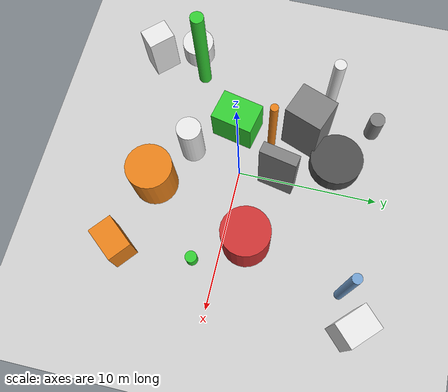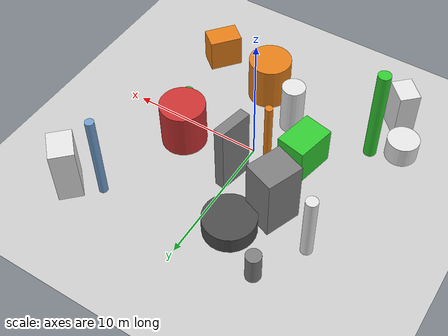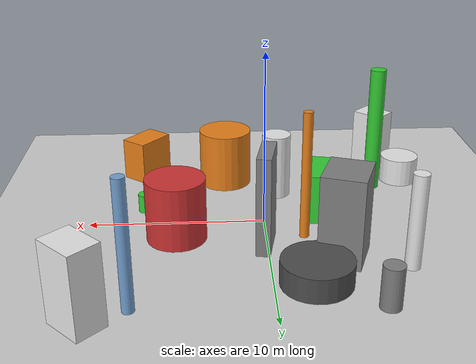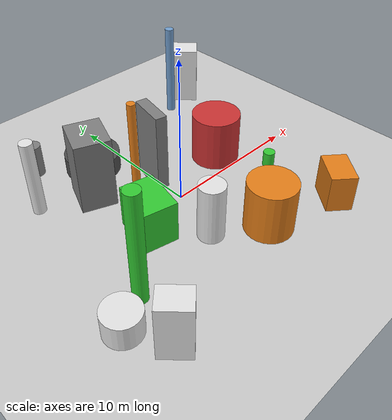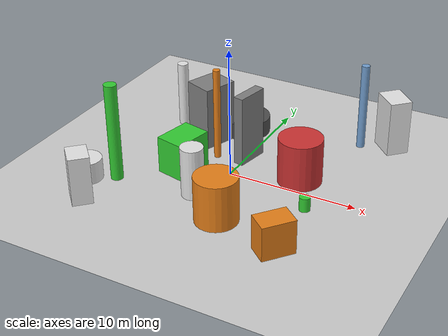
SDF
<?xml version='1.0'?>
<sdf version='1.6'>
  <world name='default'>
    <!-- Sun light -->
    <light name='sun' type='directional'>
      <cast_shadows>1</cast_shadows>
      <pose>0 0 10 0 0 0</pose>
      <diffuse>0.8 0.8 0.8 1</diffuse>
      <specular>0.2 0.2 0.2 1</specular>
      <attenuation>
        <range>1000</range>
        <constant>0.9</constant>
        <linear>0.01</linear>
        <quadratic>0.001</quadratic>
      </attenuation>
      <direction>-0.5 0.1 -0.9</direction>
    </light>

    <!-- Ground plane -->
    <model name='ground_plane'>
      <static>1</static>
      <link name='link'>
        <collision name='collision'>
          <geometry>
            <plane>
              <normal>0 0 1</normal>
              <size>100 100</size>
            </plane>
          </geometry>
          <surface>
            <contact>
              <collide_bitmask>65535</collide_bitmask>
              <ode/>
            </contact>
            <friction>
              <ode>
                <mu>100</mu>
                <mu2>50</mu2>
              </ode>
              <torsional><ode/></torsional>
            </friction>
            <bounce/>
          </surface>
          <max_contacts>10</max_contacts>
        </collision>
        <visual name='visual'>
          <cast_shadows>0</cast_shadows>
          <geometry>
            <plane>
              <normal>0 0 1</normal>
              <size>100 100</size>
            </plane>
          </geometry>
          <material>
            <script>
              <uri>file://media/materials/scripts/gazebo.material</uri>
              <n>Gazebo/Grey</n>
            </script>
          </material>
        </visual>
      </link>
    </model>

    <!-- Environment -->
    <magnetic_field>6e-06 2.3e-05 -4.2e-05</magnetic_field>
    <atmosphere type='adiabatic'/>
    <physics name='default_physics' default='0' type='ode'>
      <gravity>0 0 -9.8</gravity>
      <max_step_size>0.004</max_step_size>
      <real_time_factor>1</real_time_factor>
      <real_time_update_rate>250</real_time_update_rate>
    </physics>
    <scene>
      <ambient>0.4 0.4 0.4 1</ambient>
      <background>0.7 0.7 0.7 1</background>
      <shadows>1</shadows>
    </scene>
    <wind/>
    <spherical_coordinates>
      <surface_model>EARTH_WGS84</surface_model>
      <latitude_deg>0</latitude_deg>
      <longitude_deg>0</longitude_deg>
      <elevation>0</elevation>
      <heading_deg>0</heading_deg>
    </spherical_coordinates>

    <!-- ============ OBSTACLES (17) ============ -->
    <model name='obs_00'>
      <static>1</static>
      <link name='link'>
        <visual name='visual'>
          <geometry>
            <box>
              <size>1.7451 2.2971 4.3859</size>
            </box>
          </geometry>
          <material>
            <script>
              <n>Gazebo/White</n>
              <uri>file://media/materials/scripts/gazebo.material</uri>
            </script>
            <ambient>0.9 0.9 0.9 1</ambient>
          </material>
        </visual>
        <collision name='collision'>
          <geometry>
            <box>
              <size>1.7451 2.2971 4.3859</size>
            </box>
          </geometry>
          <max_contacts>10</max_contacts>
          <surface>
            <contact><ode/></contact>
            <bounce/>
            <friction>
              <ode><mu>1</mu><mu2>1</mu2></ode>
              <torsional><ode/></torsional>
            </friction>
          </surface>
        </collision>
      </link>
      <pose>9.2237 9.4512 2.1930 0 0 0.7798</pose>
    </model>

    <model name='obs_01'>
      <static>1</static>
      <link name='link'>
        <visual name='visual'>
          <geometry>
            <cylinder>
              <radius>0.4717</radius>
              <length>7.6647</length>
            </cylinder>
          </geometry>
          <material>
            <script>
              <n>Gazebo/Green</n>
              <uri>file://media/materials/scripts/gazebo.material</uri>
            </script>
            <ambient>0.2 0.8 0.2 1</ambient>
          </material>
        </visual>
        <collision name='collision'>
          <geometry>
            <cylinder>
              <radius>0.4717</radius>
              <length>7.6647</length>
            </cylinder>
          </geometry>
          <max_contacts>10</max_contacts>
          <surface>
            <contact><ode/></contact>
            <bounce/>
            <friction>
              <ode><mu>1</mu><mu2>1</mu2></ode>
              <torsional><ode/></torsional>
            </friction>
          </surface>
        </collision>
      </link>
      <pose>-7.1525 -4.4035 3.8323 0 0 2.5764</pose>
    </model>

    <model name='obs_02'>
      <static>1</static>
      <link name='link'>
        <visual name='visual'>
          <geometry>
            <cylinder>
              <radius>1.1677</radius>
              <length>1.6631</length>
            </cylinder>
          </geometry>
          <material>
            <script>
              <n>Gazebo/White</n>
              <uri>file://media/materials/scripts/gazebo.material</uri>
            </script>
            <ambient>0.9 0.9 0.9 1</ambient>
          </material>
        </visual>
        <collision name='collision'>
          <geometry>
            <cylinder>
              <radius>1.1677</radius>
              <length>1.6631</length>
            </cylinder>
          </geometry>
          <max_contacts>10</max_contacts>
          <surface>
            <contact><ode/></contact>
            <bounce/>
            <friction>
              <ode><mu>1</mu><mu2>1</mu2></ode>
              <torsional><ode/></torsional>
            </friction>
          </surface>
        </collision>
      </link>
      <pose>-9.1220 -5.3705 0.8315 0 0 1.7466</pose>
    </model>

    <model name='obs_03'>
      <static>1</static>
      <link name='link'>
        <visual name='visual'>
          <geometry>
            <cylinder>
              <radius>0.4086</radius>
              <length>1.0837</length>
            </cylinder>
          </geometry>
          <material>
            <script>
              <n>Gazebo/Green</n>
              <uri>file://media/materials/scripts/gazebo.material</uri>
            </script>
            <ambient>0.2 0.8 0.2 1</ambient>
          </material>
        </visual>
        <collision name='collision'>
          <geometry>
            <cylinder>
              <radius>0.4086</radius>
              <length>1.0837</length>
            </cylinder>
          </geometry>
          <max_contacts>10</max_contacts>
          <surface>
            <contact><ode/></contact>
            <bounce/>
            <friction>
              <ode><mu>1</mu><mu2>1</mu2></ode>
              <torsional><ode/></torsional>
            </friction>
          </surface>
        </collision>
      </link>
      <pose>6.9101 -1.7389 0.5418 0 0 2.5255</pose>
    </model>

    <model name='obs_04'>
      <static>1</static>
      <link name='link'>
        <visual name='visual'>
          <geometry>
            <cylinder>
              <radius>1.6738</radius>
              <length>3.6057</length>
            </cylinder>
          </geometry>
          <material>
            <script>
              <n>Gazebo/Red</n>
              <uri>file://media/materials/scripts/gazebo.material</uri>
            </script>
            <ambient>0.8 0.2 0.2 1</ambient>
          </material>
        </visual>
        <collision name='collision'>
          <geometry>
            <cylinder>
              <radius>1.6738</radius>
              <length>3.6057</length>
            </cylinder>
          </geometry>
          <max_contacts>10</max_contacts>
          <surface>
            <contact><ode/></contact>
            <bounce/>
            <friction>
              <ode><mu>1</mu><mu2>1</mu2></ode>
              <torsional><ode/></torsional>
            </friction>
          </surface>
        </collision>
      </link>
      <pose>4.9580 1.6154 1.8028 0 0 0.4107</pose>
    </model>

    <model name='obs_05'>
      <static>1</static>
      <link name='link'>
        <visual name='visual'>
          <geometry>
            <box>
              <size>0.7941 2.5514 5.5871</size>
            </box>
          </geometry>
          <material>
            <script>
              <n>Gazebo/Grey</n>
              <uri>file://media/materials/scripts/gazebo.material</uri>
            </script>
            <ambient>0.5 0.5 0.5 1</ambient>
          </material>
        </visual>
        <collision name='collision'>
          <geometry>
            <box>
              <size>0.7941 2.5514 5.5871</size>
            </box>
          </geometry>
          <max_contacts>10</max_contacts>
          <surface>
            <contact><ode/></contact>
            <bounce/>
            <friction>
              <ode><mu>1</mu><mu2>1</mu2></ode>
              <torsional><ode/></torsional>
            </friction>
          </surface>
        </collision>
      </link>
      <pose>0.1086 2.7443 2.7936 0 0 2.9455</pose>
    </model>

    <model name='obs_06'>
      <static>1</static>
      <link name='link'>
        <visual name='visual'>
          <geometry>
            <cylinder>
              <radius>0.2693</radius>
              <length>7.3175</length>
            </cylinder>
          </geometry>
          <material>
            <script>
              <n>Gazebo/Orange</n>
              <uri>file://media/materials/scripts/gazebo.material</uri>
            </script>
            <ambient>0.9 0.5 0.1 1</ambient>
          </material>
        </visual>
        <collision name='collision'>
          <geometry>
            <cylinder>
              <radius>0.2693</radius>
              <length>7.3175</length>
            </cylinder>
          </geometry>
          <max_contacts>10</max_contacts>
          <surface>
            <contact><ode/></contact>
            <bounce/>
            <friction>
              <ode><mu>1</mu><mu2>1</mu2></ode>
              <torsional><ode/></torsional>
            </friction>
          </surface>
        </collision>
      </link>
      <pose>-2.1130 1.8379 3.6587 0 0 0.0685</pose>
    </model>

    <model name='obs_07'>
      <static>1</static>
      <link name='link'>
        <visual name='visual'>
          <geometry>
            <cylinder>
              <radius>0.3202</radius>
              <length>6.9309</length>
            </cylinder>
          </geometry>
          <material>
            <script>
              <n>Gazebo/Blue</n>
              <uri>file://media/materials/scripts/gazebo.material</uri>
            </script>
            <ambient>0.447 0.624 0.812 1</ambient>
          </material>
        </visual>
        <collision name='collision'>
          <geometry>
            <cylinder>
              <radius>0.3202</radius>
              <length>6.9309</length>
            </cylinder>
          </geometry>
          <max_contacts>10</max_contacts>
          <surface>
            <contact><ode/></contact>
            <bounce/>
            <friction>
              <ode><mu>1</mu><mu2>1</mu2></ode>
              <torsional><ode/></torsional>
            </friction>
          </surface>
        </collision>
      </link>
      <pose>7.0183 8.5208 3.4655 0 0 2.5425</pose>
    </model>

    <model name='obs_08'>
      <static>1</static>
      <link name='link'>
        <visual name='visual'>
          <geometry>
            <cylinder>
              <radius>1.8932</radius>
              <length>1.3545</length>
            </cylinder>
          </geometry>
          <material>
            <script>
              <n>Gazebo/DarkGrey</n>
              <uri>file://media/materials/scripts/gazebo.material</uri>
            </script>
            <ambient>0.3 0.3 0.3 1</ambient>
          </material>
        </visual>
        <collision name='collision'>
          <geometry>
            <cylinder>
              <radius>1.8932</radius>
              <length>1.3545</length>
            </cylinder>
          </geometry>
          <max_contacts>10</max_contacts>
          <surface>
            <contact><ode/></contact>
            <bounce/>
            <friction>
              <ode><mu>1</mu><mu2>1</mu2></ode>
              <torsional><ode/></torsional>
            </friction>
          </surface>
        </collision>
      </link>
      <pose>-2.1409 6.6380 0.6772 0 0 0.3849</pose>
    </model>

    <model name='obs_09'>
      <static>1</static>
      <link name='link'>
        <visual name='visual'>
          <geometry>
            <box>
              <size>3.0355 2.2364 2.9136</size>
            </box>
          </geometry>
          <material>
            <script>
              <n>Gazebo/Green</n>
              <uri>file://media/materials/scripts/gazebo.material</uri>
            </script>
            <ambient>0.2 0.8 0.2 1</ambient>
          </material>
        </visual>
        <collision name='collision'>
          <geometry>
            <box>
              <size>3.0355 2.2364 2.9136</size>
            </box>
          </geometry>
          <max_contacts>10</max_contacts>
          <surface>
            <contact><ode/></contact>
            <bounce/>
            <friction>
              <ode><mu>1</mu><mu2>1</mu2></ode>
              <torsional><ode/></torsional>
            </friction>
          </surface>
        </collision>
      </link>
      <pose>-3.4750 -0.9448 1.4568 0 0 1.3608</pose>
    </model>

    <model name='obs_10'>
      <static>1</static>
      <link name='link'>
        <visual name='visual'>
          <geometry>
            <cylinder>
              <radius>0.5472</radius>
              <length>2.3101</length>
            </cylinder>
          </geometry>
          <material>
            <script>
              <n>Gazebo/Grey</n>
              <uri>file://media/materials/scripts/gazebo.material</uri>
            </script>
            <ambient>0.5 0.5 0.5 1</ambient>
          </material>
        </visual>
        <collision name='collision'>
          <geometry>
            <cylinder>
              <radius>0.5472</radius>
              <length>2.3101</length>
            </cylinder>
          </geometry>
          <max_contacts>10</max_contacts>
          <surface>
            <contact><ode/></contact>
            <bounce/>
            <friction>
              <ode><mu>1</mu><mu2>1</mu2></ode>
              <torsional><ode/></torsional>
            </friction>
          </surface>
        </collision>
      </link>
      <pose>-5.3278 8.8711 1.1550 0 0 0.5429</pose>
    </model>

    <model name='obs_11'>
      <static>1</static>
      <link name='link'>
        <visual name='visual'>
          <geometry>
            <cylinder>
              <radius>0.4250</radius>
              <length>5.2987</length>
            </cylinder>
          </geometry>
          <material>
            <script>
              <n>Gazebo/White</n>
              <uri>file://media/materials/scripts/gazebo.material</uri>
            </script>
            <ambient>0.9 0.9 0.9 1</ambient>
          </material>
        </visual>
        <collision name='collision'>
          <geometry>
            <cylinder>
              <radius>0.4250</radius>
              <length>5.2987</length>
            </cylinder>
          </geometry>
          <max_contacts>10</max_contacts>
          <surface>
            <contact><ode/></contact>
            <bounce/>
            <friction>
              <ode><mu>1</mu><mu2>1</mu2></ode>
              <torsional><ode/></torsional>
            </friction>
          </surface>
        </collision>
      </link>
      <pose>-7.2778 5.4029 2.6494 0 0 1.4012</pose>
    </model>

    <model name='obs_12'>
      <static>1</static>
      <link name='link'>
        <visual name='visual'>
          <geometry>
            <box>
              <size>1.5329 1.9420 3.7534</size>
            </box>
          </geometry>
          <material>
            <script>
              <n>Gazebo/White</n>
              <uri>file://media/materials/scripts/gazebo.material</uri>
            </script>
            <ambient>0.9 0.9 0.9 1</ambient>
          </material>
        </visual>
        <collision name='collision'>
          <geometry>
            <box>
              <size>1.5329 1.9420 3.7534</size>
            </box>
          </geometry>
          <max_contacts>10</max_contacts>
          <surface>
            <contact><ode/></contact>
            <bounce/>
            <friction>
              <ode><mu>1</mu><mu2>1</mu2></ode>
              <torsional><ode/></torsional>
            </friction>
          </surface>
        </collision>
      </link>
      <pose>-7.8205 -7.8868 1.8767 0 0 0.7722</pose>
    </model>

    <model name='obs_13'>
      <static>1</static>
      <link name='link'>
        <visual name='visual'>
          <geometry>
            <cylinder>
              <radius>0.8586</radius>
              <length>3.9346</length>
            </cylinder>
          </geometry>
          <material>
            <script>
              <n>Gazebo/White</n>
              <uri>file://media/materials/scripts/gazebo.material</uri>
            </script>
            <ambient>0.9 0.9 0.9 1</ambient>
          </material>
        </visual>
        <collision name='collision'>
          <geometry>
            <cylinder>
              <radius>0.8586</radius>
              <length>3.9346</length>
            </cylinder>
          </geometry>
          <max_contacts>10</max_contacts>
          <surface>
            <contact><ode/></contact>
            <bounce/>
            <friction>
              <ode><mu>1</mu><mu2>1</mu2></ode>
              <torsional><ode/></torsional>
            </friction>
          </surface>
        </collision>
      </link>
      <pose>-1.0087 -3.7193 1.9673 0 0 0.2756</pose>
    </model>

    <model name='obs_14'>
      <static>1</static>
      <link name='link'>
        <visual name='visual'>
          <geometry>
            <box>
              <size>2.3403 2.7076 5.0108</size>
            </box>
          </geometry>
          <material>
            <script>
              <n>Gazebo/Grey</n>
              <uri>file://media/materials/scripts/gazebo.material</uri>
            </script>
            <ambient>0.5 0.5 0.5 1</ambient>
          </material>
        </visual>
        <collision name='collision'>
          <geometry>
            <box>
              <size>2.3403 2.7076 5.0108</size>
            </box>
          </geometry>
          <max_contacts>10</max_contacts>
          <surface>
            <contact><ode/></contact>
            <bounce/>
            <friction>
              <ode><mu>1</mu><mu2>1</mu2></ode>
              <torsional><ode/></torsional>
            </friction>
          </surface>
        </collision>
      </link>
      <pose>-3.9157 4.0941 2.5054 0 0 2.7792</pose>
    </model>

    <model name='obs_15'>
      <static>1</static>
      <link name='link'>
        <visual name='visual'>
          <geometry>
            <cylinder>
              <radius>1.5965</radius>
              <length>3.5138</length>
            </cylinder>
          </geometry>
          <material>
            <script>
              <n>Gazebo/Orange</n>
              <uri>file://media/materials/scripts/gazebo.material</uri>
            </script>
            <ambient>0.9 0.5 0.1 1</ambient>
          </material>
        </visual>
        <collision name='collision'>
          <geometry>
            <cylinder>
              <radius>1.5965</radius>
              <length>3.5138</length>
            </cylinder>
          </geometry>
          <max_contacts>10</max_contacts>
          <surface>
            <contact><ode/></contact>
            <bounce/>
            <friction>
              <ode><mu>1</mu><mu2>1</mu2></ode>
              <torsional><ode/></torsional>
            </friction>
          </surface>
        </collision>
      </link>
      <pose>2.0660 -5.6996 1.7569 0 0 3.1083</pose>
    </model>

    <model name='obs_16'>
      <static>1</static>
      <link name='link'>
        <visual name='visual'>
          <geometry>
            <box>
              <size>1.7041 2.4798 2.6080</size>
            </box>
          </geometry>
          <material>
            <script>
              <n>Gazebo/Orange</n>
              <uri>file://media/materials/scripts/gazebo.material</uri>
            </script>
            <ambient>0.9 0.5 0.1 1</ambient>
          </material>
        </visual>
        <collision name='collision'>
          <geometry>
            <box>
              <size>1.7041 2.4798 2.6080</size>
            </box>
          </geometry>
          <max_contacts>10</max_contacts>
          <surface>
            <contact><ode/></contact>
            <bounce/>
            <friction>
              <ode><mu>1</mu><mu2>1</mu2></ode>
              <torsional><ode/></torsional>
            </friction>
          </surface>
        </collision>
      </link>
      <pose>7.1315 -7.0335 1.3040 0 0 2.4550</pose>
    </model>

    <!-- GUI camera -->
    <gui fullscreen='0'>
      <camera name='user_camera'>
        <pose>-15 0 18 0 0.85 0.15</pose>
        <view_controller>orbit</view_controller>
        <projection_type>perspective</projection_type>
      </camera>
    </gui>
  </world>
</sdf>
